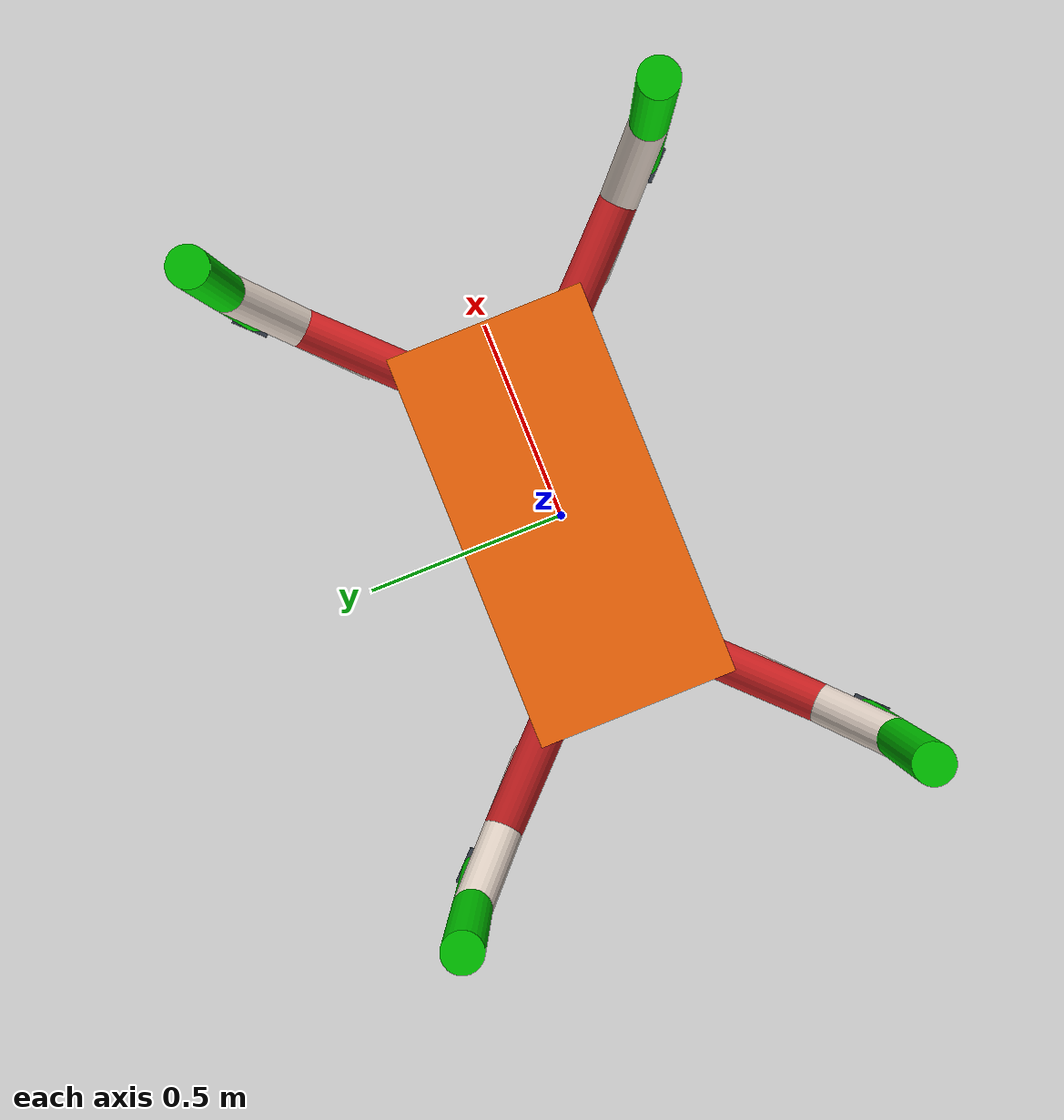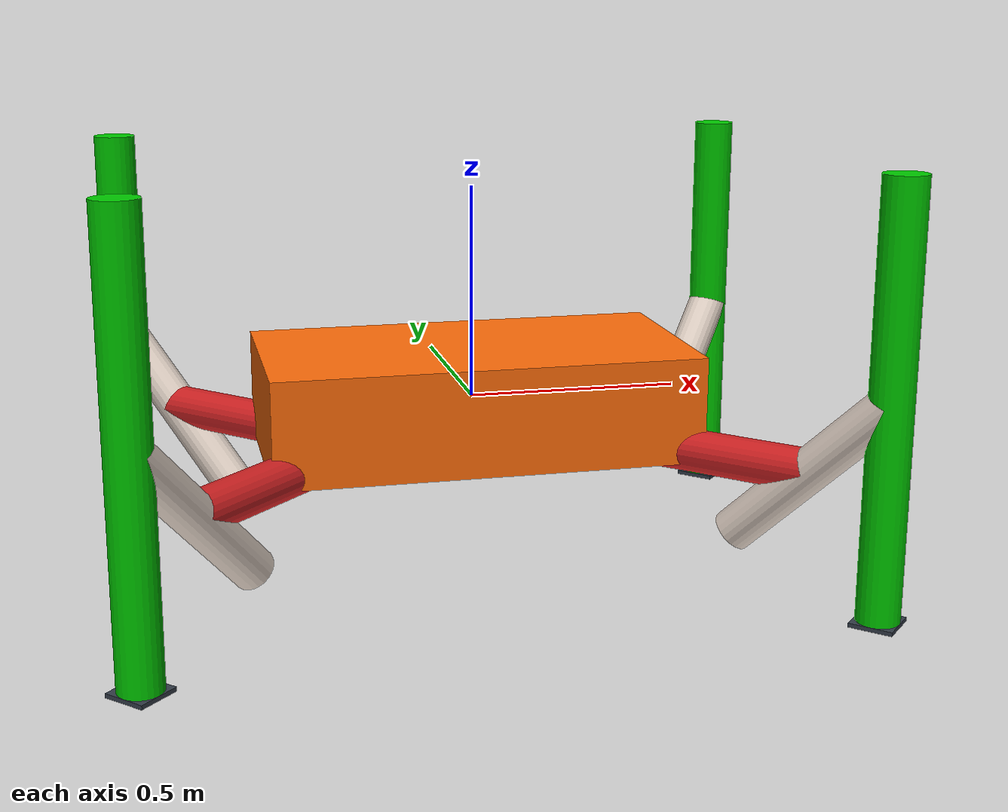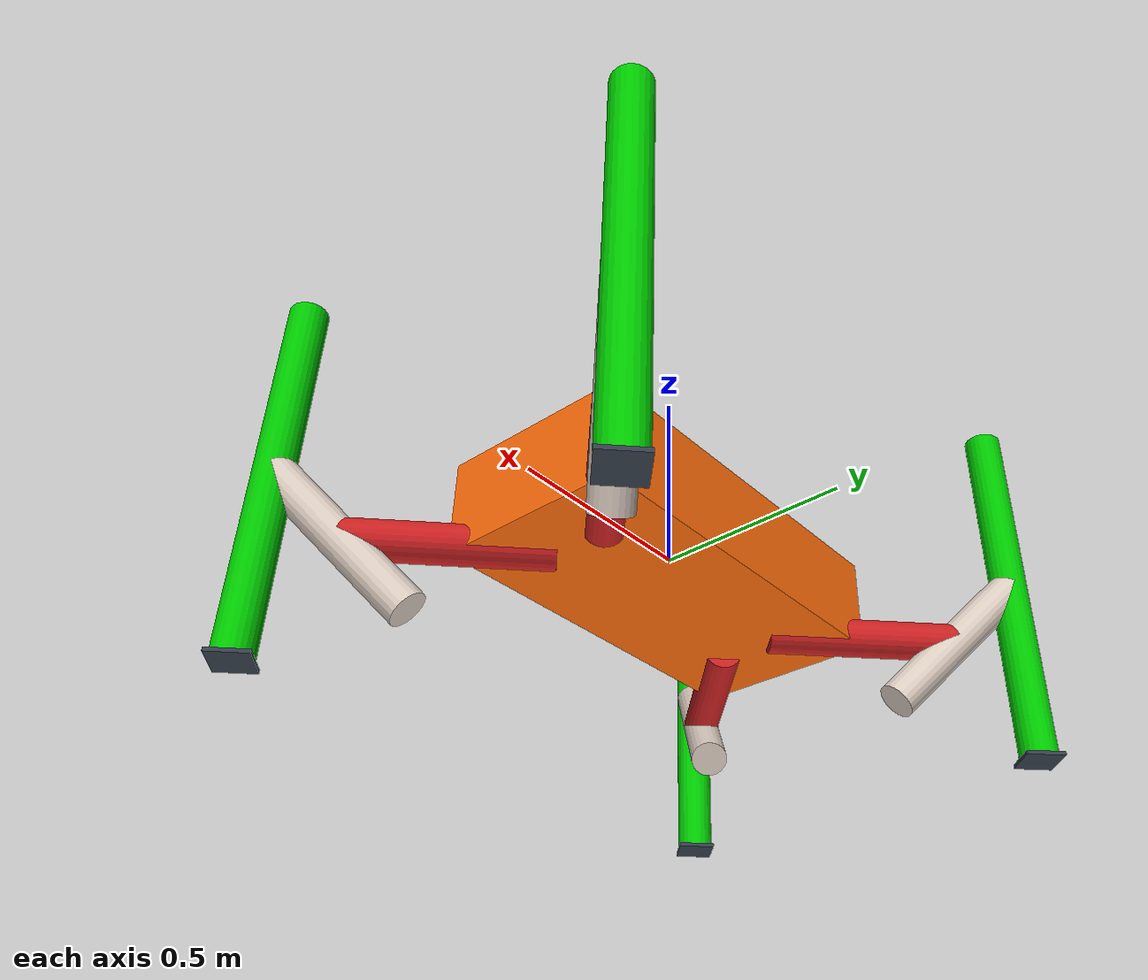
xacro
<?xml version= "1.0"?>

<robot name = "spider_desc" xmlns:xacro="https://www.ros.org/wiki/xacro">
<!--color definition-->
<material name="black">
    <color rgba="0.0 0.0 0.0 1.0"/>
  </material>
  <material name="blue">
    <color rgba="0.203125 0.23828125 0.28515625 1.0"/>
  </material>
  <material name="green">
    <color rgba="0.0 0.8 0.0 1.0"/>
  </material>
  <material name="grey">
    <color rgba="0.2 0.2 0.2 1.0"/>
  </material>
  <material name="orange">
    <color rgba="1.0 0.423529411765 0.0392156862745 1.0"/>
  </material>
  <material name="brown">
    <color rgba="0.870588235294 0.811764705882 0.764705882353 1.0"/>
  </material>
  <material name="red">
    <color rgba="0.80078125 0.12890625 0.1328125 1.0"/>
  </material>
  <material name="white">
    <color rgba="1.0 1.0 1.0 1.0"/>
  </material>
<!--base link-->
<link name = "link_chassis">
<pose> 0 0 0 0 0 0</pose>

<collision name = "collision_link_chassis">
<geometry>
	<box size = " 1 0.5 0.2 "/>
</geometry>
</collision>

<visual>
<origin rpy = "0 0 0" xyz = "0 0 0"/>
<geometry>
<box size = "1 0.5 0.25"/>
</geometry>
<material name = "orange"/>
</visual>

<inertial>
    <mass value = "1"/>
    <inertia ixx="0.02604167" ixy="0.0" ixz="0.0" iyy="0.088541" iyz="0.0" izx="0.0" izy="0.0" izz=".1041667"/>
 </inertial>

</link>

<!--upper left limb-->
<link name = "ulf_limb">
  <pose> 0 0 0 0 0 0</pose>

<collision name = "collision_ulf_limb">
 <geometry>
    <cylinder length = "0.5" radius = "0.05" />
</geometry>
</collision>

<visual>
 <origin rpy = "0 0 0" xyz = "0 0 0"/>
<geometry>
  <cylinder length = "0.5" radius = "0.05" />
</geometry>
<material name = "red"/>
</visual>

<inertial>
    <mass value= "0.25"/>
    <inertia ixx="0.005364" ixy="0.0" ixz="0.0" iyy="0.005364" iyz="0.0" izx="0.0" izy="0.0" izz="0.0003125"/>
 </inertial>

</link>

<link name = "ulf_leg">
  <pose>0 0 0 0 0 0</pose>

  <collision name = "collision_ulf_leg">
    <geometry>
      <cylinder length = "1.0" radius = "0.05"/>
    </geometry>
  </collision>

  <visual>
    <origin rpy = "0 0 0" xyz = "0 0 0"/>
    <geometry>
      <cylinder length = "1.0" radius = "0.05"/>
    </geometry>
    <material name = "green" />
  </visual>

</link>

<link name = "ulf_femur">
  <pose>0 0 0 0 0 0</pose>

  <collision name = "collision_ulf_femur">
    <geometry>
      <cylinder length = "0.5" radius = "0.05"/>
    </geometry>
  </collision>

  <visual>
    <origin rpy = "0 0 0" xyz = "0 0 0"/>
    <geometry>
      <cylinder length = "0.5" radius = "0.05"/>
    </geometry>
    <material name = "brown" />
  </visual>

</link>

<link name = "ulf_paw">
  <pose>0 0 0 0 0 0</pose>

  <collision name = "collision_ulf_paw">
    <geometry>
      <box size = "0.1 0.1 0.01"/>
    </geometry>
  </collision>

  <visual>
    <origin rpy = "0 0 0" xyz = "0 0 0"/>
    <geometry>
      <box size = "0.1 0.1 0.01"/>
    </geometry>
    <material name = "blue" />
  </visual>

</link>
<!--upper right limb-->
<link name = "urf_limb">
  <pose> 0 0 0 0 0 0</pose>

<collision name = "collision_urf_limb">
 <geometry>
    <cylinder length = "0.5" radius = "0.05" />
</geometry>
</collision>

<visual>
 <origin rpy = "0 0 0" xyz = "0 0 0"/>
<geometry>
  <cylinder length = "0.5" radius = "0.05" />
</geometry>
<material name = "red"/>
</visual>

<inertial>
    <mass value= "0.25"/>
    <inertia ixx="0.005364" ixy="0.0" ixz="0.0" iyy="0.005364" iyz="0.0" izx="0.0" izy="0.0" izz="0.0003125"/>
 </inertial>

</link>

<link name = "urf_leg">
  <pose>0 0 0 0 0 0</pose>

  <collision name = "collision_urf_leg">
    <geometry>
      <cylinder length = "1.0" radius = "0.05"/>
    </geometry>
  </collision>

  <visual>
    <origin rpy = "0 0 0" xyz = "0 0 0"/>
    <geometry>
      <cylinder length = "1.0" radius = "0.05"/>
    </geometry>
    <material name = "green" />
  </visual>
</link>

<link name = "urf_femur">
  <pose>0 0 0 0 0 0</pose>

  <collision name = "collision_urf_femur">
    <geometry>
      <cylinder length = "0.5" radius = "0.05"/>
    </geometry>
  </collision>

  <visual>
    <origin rpy = "0 0 0" xyz = "0 0 0"/>
    <geometry>
      <cylinder length = "0.5" radius = "0.05"/>
    </geometry>
    <material name = "brown" />
  </visual>

</link>

<link name = "urf_paw">
  <pose>0 0 0 0 0 0</pose>

  <collision name = "collision_urf_paw">
    <geometry>
      <box size = "0.1 0.1 0.01"/>
    </geometry>
  </collision>

  <visual>
    <origin rpy = "0 0 0" xyz = "0 0 0"/>
    <geometry>
      <box size = "0.1 0.1 0.01"/>
    </geometry>
    <material name = "blue" />
  </visual>
</link>
<!--back left limb-->
<link name = "blf_limb">
  <pose> 0 0 0 0 0 0</pose>

<collision name = "collision_blf_limb">
 <geometry>
    <cylinder length = "0.5" radius = "0.05" />
</geometry>
</collision>

<visual>
 <origin rpy = "0 0 0" xyz = "0 0 0"/>
<geometry>
  <cylinder length = "0.5" radius = "0.05" />
</geometry>
<material name = "red"/>
</visual>

<inertial>
    <mass value= "0.25"/>
    <inertia ixx="0.005364" ixy="0.0" ixz="0.0" iyy="0.005364" iyz="0.0" izx="0.0" izy="0.0" izz="0.0003125"/>
 </inertial>

</link>

<link name = "blf_leg">
  <pose>0 0 0 0 0 0</pose>

  <collision name = "collision_blf_leg">
    <geometry>
      <cylinder length = "1.0" radius = "0.05"/>
    </geometry>
  </collision>

  <visual>
    <origin rpy = "0 0 0" xyz = "0 0 0"/>
    <geometry>
      <cylinder length = "1.0" radius = "0.05"/>
    </geometry>
    <material name = "green" />
  </visual>
</link>

<link name = "blf_femur">
  <pose>0 0 0 0 0 0</pose>

  <collision name = "collision_blf_femur">
    <geometry>
      <cylinder length = "0.5" radius = "0.05"/>
    </geometry>
  </collision>

  <visual>
    <origin rpy = "0 0 0" xyz = "0 0 0"/>
    <geometry>
      <cylinder length = "0.5" radius = "0.05"/>
    </geometry>
    <material name = "brown" />
  </visual>

</link>

<link name = "blf_paw">
  <pose>0 0 0 0 0 0</pose>

  <collision name = "collision_blf_paw">
    <geometry>
      <box size = "0.1 0.1 0.01"/>
    </geometry>
  </collision>

  <visual>
    <origin rpy = "0 0 0" xyz = "0 0 0"/>
    <geometry>
      <box size = "0.1 0.1 0.01"/>
    </geometry>
    <material name = "blue" />
  </visual>
</link>
<!--back right limb-->
<link name = "brf_limb">
  <pose> 0 0 0 0 0 0</pose>

<collision name = "collision_brf_limb">
 <geometry>
    <cylinder length = "0.5" radius = "0.05" />
</geometry>
</collision>

<visual>
 <origin rpy = "0 0 0" xyz = "0 0 0"/>
<geometry>
  <cylinder length = "0.5" radius = "0.05" />
</geometry>
<material name = "red"/>
</visual>

<inertial>
    <mass value= "0.25"/>
    <inertia ixx="0.005364" ixy="0.0" ixz="0.0" iyy="0.005364" iyz="0.0" izx="0.0" izy="0.0" izz="0.0003125"/>
 </inertial>

</link>

<link name = "brf_leg">
  <pose>0 0 0 0 0 0</pose>

  <collision name = "collision_brf_leg">
    <geometry>
      <cylinder length = "1.0" radius = "0.05"/>
    </geometry>
  </collision>

  <visual>
    <origin rpy = "0 0 0" xyz = "0 0 0"/>
    <geometry>
      <cylinder length = "1.0" radius = "0.05"/>
    </geometry>
    <material name = "green" />
  </visual>
</link>

<link name = "brf_femur">
  <pose>0 0 0 0 0 0</pose>

  <collision name = "collision_brf_femur">
    <geometry>
      <cylinder length = "0.5" radius = "0.05"/>
    </geometry>
  </collision>

  <visual>
    <origin rpy = "0 0 0" xyz = "0 0 0"/>
    <geometry>
      <cylinder length = "0.5" radius = "0.05"/>
    </geometry>
    <material name = "brown" />
  </visual>

</link>

<link name = "brf_paw">
  <pose>0 0 0 0 0 0</pose>

  <collision name = "collision_brf_paw">
    <geometry>
      <box size = "0.1 0.1 0.01"/>
    </geometry>
  </collision>

  <visual>
    <origin rpy = "0 0 0" xyz = "0 0 0"/>
    <geometry>
      <box size = "0.1 0.1 0.01"/>
    </geometry>
    <material name = "blue" />
  </visual>
</link>
<!--joint definitions here-->
<!--joints for ulf-->
<joint name = "ulf_1" type = "revolute">
  <parent link = "link_chassis"/>
  <child link = "ulf_limb"/>
    <origin xyz = "0.5 0.25 -0.1" rpy = "0 1.57 0.785"/>
      <limit lower = "-1.57" upper = "1.57" effort = "10" velocity = "3"/>
      <axis xyz = "1 0 0"/>
</joint>

<joint name = "ulf_2" type = "revolute">
  <parent link = "ulf_limb"/>
  <child link = "ulf_femur"/>
    <origin xyz = "0 0 0.25" rpy = "0 2.355 0"/>
      <limit lower = "-0.785" upper = "0.785" effort = "10" velocity = "3"/>
      <axis xyz = "0 1 0"/>
</joint>

<joint name = "ulf_3" type = "revolute">
  <parent link = "ulf_femur"/>
  <child link = "ulf_leg"/>
    <origin xyz = "0 0 -0.25" rpy = "0 2.355 0"/>
      <limit lower = "-0.785" upper = "0.785" effort = "10" velocity = "3"/>
      <axis xyz = "0 1 0"/>
</joint>

<joint name = "ulf_4" type = "fixed">
  <parent link = "ulf_leg"/>
  <child link = "ulf_paw"/>
    <origin xyz = "0 0 -0.5" rpy = "0 0 0"/>
</joint>

<!--joints for urf-->
<joint name = "urf_1" type = "revolute">
  <parent link = "link_chassis"/>
  <child link = "urf_limb"/>
    <origin xyz = "0.5 -0.25 -0.1" rpy = "0 1.57 -0.785"/>
      <limit lower = "-1.57" upper = "1.57" effort = "10" velocity = "3"/>
      <axis xyz = "1 0 0"/>
</joint>

<joint name = "urf_2" type = "revolute">
  <parent link = "urf_limb"/>
  <child link = "urf_femur"/>
    <origin xyz = "0 0 0.25" rpy = "0 2.355 0"/>
      <limit lower = "-0.785" upper = "0.785" effort = "10" velocity = "3"/>
      <axis xyz = "0 1 0"/>
</joint>

<joint name = "urf_3" type = "revolute">
  <parent link = "urf_femur"/>
  <child link = "urf_leg"/>
    <origin xyz = "0 0 -0.25" rpy = "0 2.355 0"/>
      <limit lower = "-0.785" upper = "0.785" effort = "10" velocity = "3"/>
      <axis xyz = "0 1 0"/>
</joint>

<joint name = "urf_4" type = "fixed">
  <parent link = "urf_leg"/>
  <child link = "urf_paw"/>
    <origin xyz = "0 0 -0.5" rpy = "0 0 0"/>
</joint>
<!--joints for blf-->
<joint name = "blf_1" type = "revolute">
  <parent link = "link_chassis"/>
  <child link = "blf_limb"/>
    <origin xyz = "-0.5 0.25 -0.1" rpy = "0 1.57 2.355"/>
      <limit lower = "-1.57" upper = "1.57" effort = "10" velocity = "3"/>
      <axis xyz = "1 0 0"/>
</joint>

<joint name = "blf_2" type = "revolute">
  <parent link = "blf_limb"/>
  <child link = "blf_femur"/>
    <origin xyz = "0 0 0.25" rpy = "0 2.355 0"/>
      <limit lower = "-0.785" upper = "0.785" effort = "10" velocity = "3"/>
      <axis xyz = "0 1 0"/>
</joint>

<joint name = "blf_3" type = "revolute">
  <parent link = "blf_femur"/>
  <child link = "blf_leg"/>
    <origin xyz = "0 0 -0.25" rpy = "0 2.355 0"/>
      <limit lower = "-0.785" upper = "0.785" effort = "10" velocity = "3"/>
      <axis xyz = "0 1 0"/>
</joint>

<joint name = "blf_4" type = "fixed">
  <parent link = "blf_leg"/>
  <child link = "blf_paw"/>
    <origin xyz = "0 0 -0.5" rpy = "0 0 0"/>
</joint>
<!--joints for brf-->
<joint name = "brf_1" type = "revolute">
  <parent link = "link_chassis"/>
  <child link = "brf_limb"/>
    <origin xyz = "-0.5 -0.25 -0.1" rpy = "0 1.57 3.925"/>
      <limit lower = "-1.57" upper = "1.57" effort = "10" velocity = "3"/>
      <axis xyz = "1 0 0"/>
</joint>

<joint name = "brf_2" type = "revolute">
  <parent link = "brf_limb"/>
  <child link = "brf_femur"/>
    <origin xyz = "0 0 0.25" rpy = "0 2.355 0"/>
      <limit lower = "-0.785" upper = "0.785" effort = "10" velocity = "3"/>
      <axis xyz = "0 1 0"/>
</joint>

<joint name = "brf_3" type = "revolute">
  <parent link = "brf_femur"/>
  <child link = "brf_leg"/>
    <origin xyz = "0 0 -0.25" rpy = "0 2.355 0"/>
      <limit lower = "-0.785" upper = "0.785" effort = "10" velocity = "3"/>
      <axis xyz = "0 1 0"/>
</joint>

<joint name = "brf_4" type = "fixed">
  <parent link = "brf_leg"/>
  <child link = "brf_paw"/>
    <origin xyz = "0 0 -0.5" rpy = "0 0 0"/>
</joint>
</robot>
